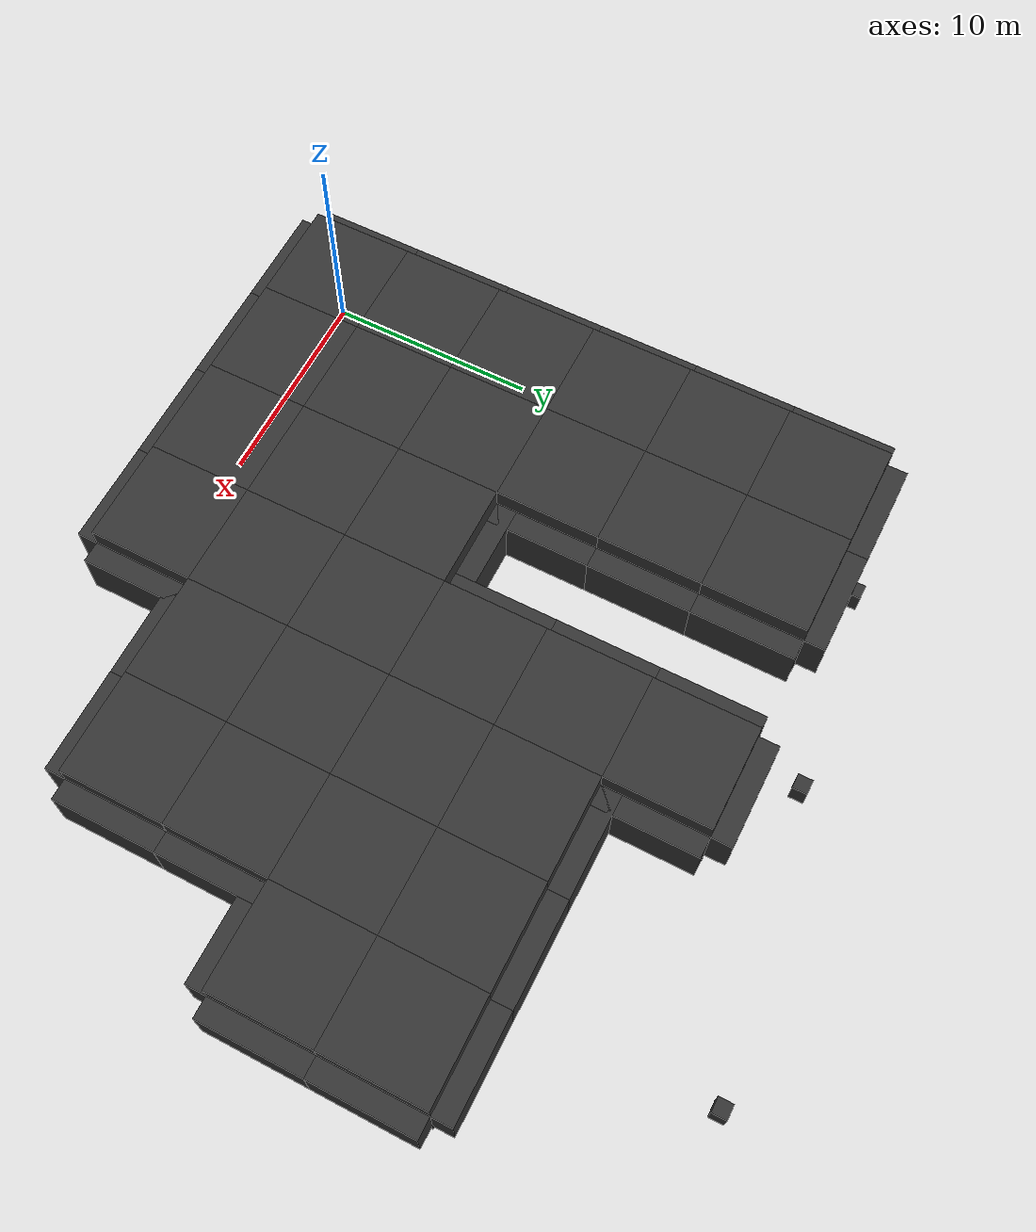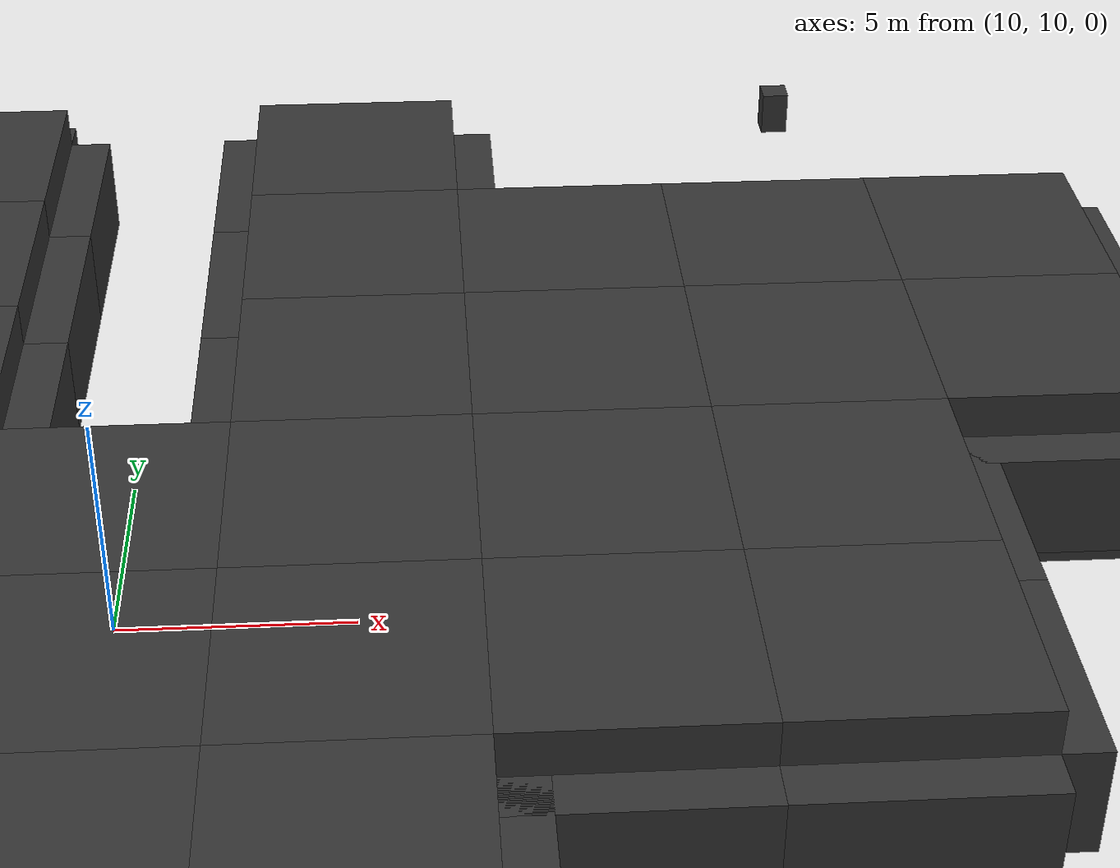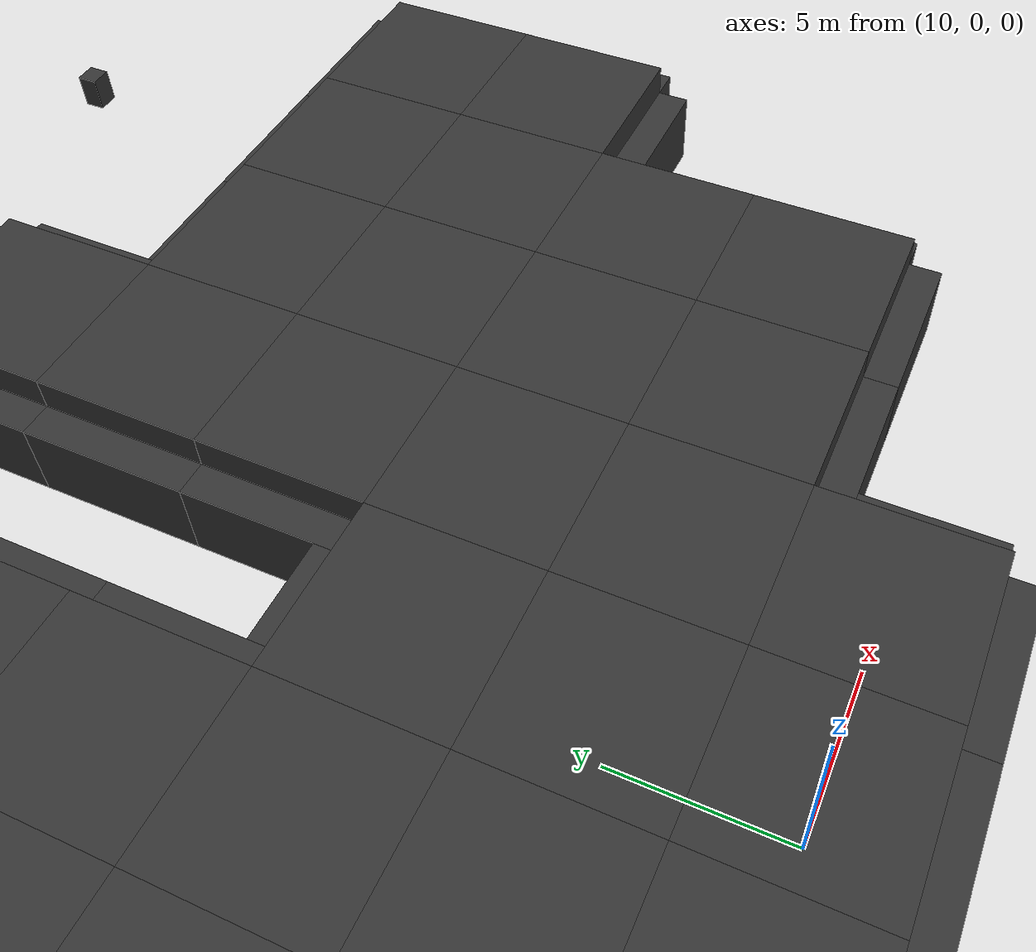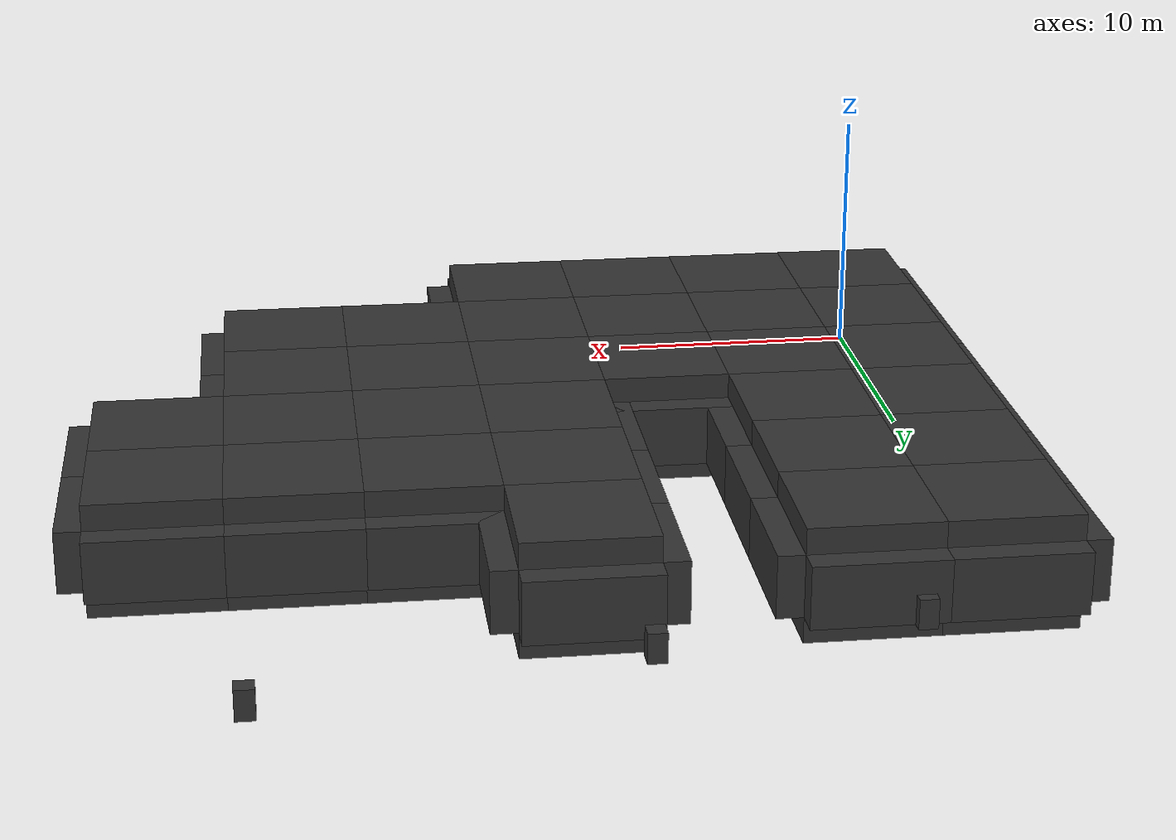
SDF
<sdf version="1.8">
 <world name="RG1">
  <model name="floor_1">
   <static>true</static>
   <pose>0.0 0.0 -0.5 0.0 0.0 0.0</pose>
   <link name="floor_1-base-link">
    <visual name="floor_1-visual">
     <geometry><box><size>5 5 1.0</size></box></geometry>
     <material><diffuse>0.2 0.2 0.2 1</diffuse><specular>0.1 0.1 0.1 1</specular></material>
    </visual>
   </link>
  </model>
  <model name="ceiling_1">
   <static>true</static>
   <pose>0.0 0.0 2.9 0.0 0.0 0.0</pose>
   <link name="ceiling_1-base-link">
    <visual name="ceiling_1-visual">
     <geometry><box><size>5 5 1.0</size></box></geometry>
     <material><diffuse>0.2 0.2 0.2 1</diffuse><specular>0.1 0.1 0.1 1</specular></material>
    </visual>
    <light type="point" name="ceiling_1-light">
     <pose>0 0 -1 0 0 0</pose>
     <cast_shadows>false</cast_shadows>
     <diffuse>0.8 0.8 0.8 1</diffuse>
     <attenuation>
      <range>10</range>
      <constant>0.8</constant>
      <linear>0.05</linear>
      <quadratic>0.01</quadratic>
     </attenuation>
    </light>
   </link>
  </model>
  <model name="wall_1">
   <static>true</static>
   <pose>-3.0 0.0 1.2 0.0 0.0 1.570796326795</pose>
   <link name="wall_1-base-link">
    <visual name="wall_1-visual">
     <geometry><box><size>5 1 2.4</size></box></geometry>
     <material><diffuse>0.2 0.2 0.2 1</diffuse><specular>0.1 0.1 0.1 1</specular></material>
    </visual>
   </link>
  </model>
  <model name="wall_2">
   <static>true</static>
   <pose>0.0 -3.0 1.2 0.0 0.0 0.0</pose>
   <link name="wall_2-base-link">
    <visual name="wall_2-visual">
     <geometry><box><size>5 1 2.4</size></box></geometry>
     <material><diffuse>0.2 0.2 0.2 1</diffuse><specular>0.1 0.1 0.1 1</specular></material>
    </visual>
   </link>
  </model>
  <model name="floor_2">
   <static>true</static>
   <pose>0.0 5.0 -0.5 0.0 0.0 0.0</pose>
   <link name="floor_2-base-link">
    <visual name="floor_2-visual">
     <geometry><box><size>5 5 1.0</size></box></geometry>
     <material><diffuse>0.2 0.2 0.2 1</diffuse><specular>0.1 0.1 0.1 1</specular></material>
    </visual>
   </link>
  </model>
  <model name="ceiling_2">
   <static>true</static>
   <pose>0.0 5.0 2.9 0.0 0.0 0.0</pose>
   <link name="ceiling_2-base-link">
    <visual name="ceiling_2-visual">
     <geometry><box><size>5 5 1.0</size></box></geometry>
     <material><diffuse>0.2 0.2 0.2 1</diffuse><specular>0.1 0.1 0.1 1</specular></material>
    </visual>
    <light type="point" name="ceiling_2-light">
     <pose>0 0 -1 0 0 0</pose>
     <cast_shadows>false</cast_shadows>
     <diffuse>0.8 0.8 0.8 1</diffuse>
     <attenuation>
      <range>10</range>
      <constant>0.8</constant>
      <linear>0.05</linear>
      <quadratic>0.01</quadratic>
     </attenuation>
    </light>
   </link>
  </model>
  <model name="wall_3">
   <static>true</static>
   <pose>-3.0 5.0 1.2 0.0 0.0 1.570796326795</pose>
   <link name="wall_3-base-link">
    <visual name="wall_3-visual">
     <geometry><box><size>5 1 2.4</size></box></geometry>
     <material><diffuse>0.2 0.2 0.2 1</diffuse><specular>0.1 0.1 0.1 1</specular></material>
    </visual>
   </link>
  </model>
  <model name="floor_3">
   <static>true</static>
   <pose>0.0 10.0 -0.5 0.0 0.0 0.0</pose>
   <link name="floor_3-base-link">
    <visual name="floor_3-visual">
     <geometry><box><size>5 5 1.0</size></box></geometry>
     <material><diffuse>0.2 0.2 0.2 1</diffuse><specular>0.1 0.1 0.1 1</specular></material>
    </visual>
   </link>
  </model>
  <model name="ceiling_3">
   <static>true</static>
   <pose>0.0 10.0 2.9 0.0 0.0 0.0</pose>
   <link name="ceiling_3-base-link">
    <visual name="ceiling_3-visual">
     <geometry><box><size>5 5 1.0</size></box></geometry>
     <material><diffuse>0.2 0.2 0.2 1</diffuse><specular>0.1 0.1 0.1 1</specular></material>
    </visual>
    <light type="point" name="ceiling_3-light">
     <pose>0 0 -1 0 0 0</pose>
     <cast_shadows>false</cast_shadows>
     <diffuse>0.8 0.8 0.8 1</diffuse>
     <attenuation>
      <range>10</range>
      <constant>0.8</constant>
      <linear>0.05</linear>
      <quadratic>0.01</quadratic>
     </attenuation>
    </light>
   </link>
  </model>
  <model name="wall_4">
   <static>true</static>
   <pose>-3.0 10.0 1.2 0.0 0.0 1.570796326795</pose>
   <link name="wall_4-base-link">
    <visual name="wall_4-visual">
     <geometry><box><size>5 1 2.4</size></box></geometry>
     <material><diffuse>0.2 0.2 0.2 1</diffuse><specular>0.1 0.1 0.1 1</specular></material>
    </visual>
   </link>
  </model>
  <model name="floor_4">
   <static>true</static>
   <pose>0.0 15.0 -0.5 0.0 0.0 0.0</pose>
   <link name="floor_4-base-link">
    <visual name="floor_4-visual">
     <geometry><box><size>5 5 1.0</size></box></geometry>
     <material><diffuse>0.2 0.2 0.2 1</diffuse><specular>0.1 0.1 0.1 1</specular></material>
    </visual>
   </link>
  </model>
  <model name="ceiling_4">
   <static>true</static>
   <pose>0.0 15.0 2.9 0.0 0.0 0.0</pose>
   <link name="ceiling_4-base-link">
    <visual name="ceiling_4-visual">
     <geometry><box><size>5 5 1.0</size></box></geometry>
     <material><diffuse>0.2 0.2 0.2 1</diffuse><specular>0.1 0.1 0.1 1</specular></material>
    </visual>
    <light type="point" name="ceiling_4-light">
     <pose>0 0 -1 0 0 0</pose>
     <cast_shadows>false</cast_shadows>
     <diffuse>0.8 0.8 0.8 1</diffuse>
     <attenuation>
      <range>10</range>
      <constant>0.8</constant>
      <linear>0.05</linear>
      <quadratic>0.01</quadratic>
     </attenuation>
    </light>
   </link>
  </model>
  <model name="wall_5">
   <static>true</static>
   <pose>-3.0 15.0 1.2 0.0 0.0 1.570796326795</pose>
   <link name="wall_5-base-link">
    <visual name="wall_5-visual">
     <geometry><box><size>5 1 2.4</size></box></geometry>
     <material><diffuse>0.2 0.2 0.2 1</diffuse><specular>0.1 0.1 0.1 1</specular></material>
    </visual>
   </link>
  </model>
  <model name="floor_5">
   <static>true</static>
   <pose>0.0 20.0 -0.5 0.0 0.0 0.0</pose>
   <link name="floor_5-base-link">
    <visual name="floor_5-visual">
     <geometry><box><size>5 5 1.0</size></box></geometry>
     <material><diffuse>0.2 0.2 0.2 1</diffuse><specular>0.1 0.1 0.1 1</specular></material>
    </visual>
   </link>
  </model>
  <model name="ceiling_5">
   <static>true</static>
   <pose>0.0 20.0 2.9 0.0 0.0 0.0</pose>
   <link name="ceiling_5-base-link">
    <visual name="ceiling_5-visual">
     <geometry><box><size>5 5 1.0</size></box></geometry>
     <material><diffuse>0.2 0.2 0.2 1</diffuse><specular>0.1 0.1 0.1 1</specular></material>
    </visual>
    <light type="point" name="ceiling_5-light">
     <pose>0 0 -1 0 0 0</pose>
     <cast_shadows>false</cast_shadows>
     <diffuse>0.8 0.8 0.8 1</diffuse>
     <attenuation>
      <range>10</range>
      <constant>0.8</constant>
      <linear>0.05</linear>
      <quadratic>0.01</quadratic>
     </attenuation>
    </light>
   </link>
  </model>
  <model name="wall_6">
   <static>true</static>
   <pose>-3.0 20.0 1.2 0.0 0.0 1.570796326795</pose>
   <link name="wall_6-base-link">
    <visual name="wall_6-visual">
     <geometry><box><size>5 1 2.4</size></box></geometry>
     <material><diffuse>0.2 0.2 0.2 1</diffuse><specular>0.1 0.1 0.1 1</specular></material>
    </visual>
   </link>
  </model>
  <model name="floor_6">
   <static>true</static>
   <pose>0.0 25.0 -0.5 0.0 0.0 0.0</pose>
   <link name="floor_6-base-link">
    <visual name="floor_6-visual">
     <geometry><box><size>5 5 1.0</size></box></geometry>
     <material><diffuse>0.2 0.2 0.2 1</diffuse><specular>0.1 0.1 0.1 1</specular></material>
    </visual>
   </link>
  </model>
  <model name="ceiling_6">
   <static>true</static>
   <pose>0.0 25.0 2.9 0.0 0.0 0.0</pose>
   <link name="ceiling_6-base-link">
    <visual name="ceiling_6-visual">
     <geometry><box><size>5 5 1.0</size></box></geometry>
     <material><diffuse>0.2 0.2 0.2 1</diffuse><specular>0.1 0.1 0.1 1</specular></material>
    </visual>
    <light type="point" name="ceiling_6-light">
     <pose>0 0 -1 0 0 0</pose>
     <cast_shadows>false</cast_shadows>
     <diffuse>0.8 0.8 0.8 1</diffuse>
     <attenuation>
      <range>10</range>
      <constant>0.8</constant>
      <linear>0.05</linear>
      <quadratic>0.01</quadratic>
     </attenuation>
    </light>
   </link>
  </model>
  <model name="wall_7">
   <static>true</static>
   <pose>-3.0 25.0 1.2 0.0 0.0 1.570796326795</pose>
   <link name="wall_7-base-link">
    <visual name="wall_7-visual">
     <geometry><box><size>5 1 2.4</size></box></geometry>
     <material><diffuse>0.2 0.2 0.2 1</diffuse><specular>0.1 0.1 0.1 1</specular></material>
    </visual>
   </link>
  </model>
  <model name="wall_8">
   <static>true</static>
   <pose>0.0 28.0 1.2 0.0 0.0 0.0</pose>
   <link name="wall_8-base-link">
    <visual name="wall_8-visual">
     <geometry><box><size>5 1 2.4</size></box></geometry>
     <material><diffuse>0.2 0.2 0.2 1</diffuse><specular>0.1 0.1 0.1 1</specular></material>
    </visual>
   </link>
  </model>
  <model name="floor_7">
   <static>true</static>
   <pose>5.0 0.0 -0.5 0.0 0.0 0.0</pose>
   <link name="floor_7-base-link">
    <visual name="floor_7-visual">
     <geometry><box><size>5 5 1.0</size></box></geometry>
     <material><diffuse>0.2 0.2 0.2 1</diffuse><specular>0.1 0.1 0.1 1</specular></material>
    </visual>
   </link>
  </model>
  <model name="ceiling_7">
   <static>true</static>
   <pose>5.0 0.0 2.9 0.0 0.0 0.0</pose>
   <link name="ceiling_7-base-link">
    <visual name="ceiling_7-visual">
     <geometry><box><size>5 5 1.0</size></box></geometry>
     <material><diffuse>0.2 0.2 0.2 1</diffuse><specular>0.1 0.1 0.1 1</specular></material>
    </visual>
    <light type="point" name="ceiling_7-light">
     <pose>0 0 -1 0 0 0</pose>
     <cast_shadows>false</cast_shadows>
     <diffuse>0.8 0.8 0.8 1</diffuse>
     <attenuation>
      <range>10</range>
      <constant>0.8</constant>
      <linear>0.05</linear>
      <quadratic>0.01</quadratic>
     </attenuation>
    </light>
   </link>
  </model>
  <model name="wall_9">
   <static>true</static>
   <pose>5.0 -3.0 1.2 0.0 0.0 0.0</pose>
   <link name="wall_9-base-link">
    <visual name="wall_9-visual">
     <geometry><box><size>5 1 2.4</size></box></geometry>
     <material><diffuse>0.2 0.2 0.2 1</diffuse><specular>0.1 0.1 0.1 1</specular></material>
    </visual>
   </link>
  </model>
  <model name="floor_8">
   <static>true</static>
   <pose>5.0 5.0 -0.5 0.0 0.0 0.0</pose>
   <link name="floor_8-base-link">
    <visual name="floor_8-visual">
     <geometry><box><size>5 5 1.0</size></box></geometry>
     <material><diffuse>0.2 0.2 0.2 1</diffuse><specular>0.1 0.1 0.1 1</specular></material>
    </visual>
   </link>
  </model>
  <model name="ceiling_8">
   <static>true</static>
   <pose>5.0 5.0 2.9 0.0 0.0 0.0</pose>
   <link name="ceiling_8-base-link">
    <visual name="ceiling_8-visual">
     <geometry><box><size>5 5 1.0</size></box></geometry>
     <material><diffuse>0.2 0.2 0.2 1</diffuse><specular>0.1 0.1 0.1 1</specular></material>
    </visual>
    <light type="point" name="ceiling_8-light">
     <pose>0 0 -1 0 0 0</pose>
     <cast_shadows>false</cast_shadows>
     <diffuse>0.8 0.8 0.8 1</diffuse>
     <attenuation>
      <range>10</range>
      <constant>0.8</constant>
      <linear>0.05</linear>
      <quadratic>0.01</quadratic>
     </attenuation>
    </light>
   </link>
  </model>
  <model name="floor_9">
   <static>true</static>
   <pose>5.0 10.0 -0.5 0.0 0.0 0.0</pose>
   <link name="floor_9-base-link">
    <visual name="floor_9-visual">
     <geometry><box><size>5 5 1.0</size></box></geometry>
     <material><diffuse>0.2 0.2 0.2 1</diffuse><specular>0.1 0.1 0.1 1</specular></material>
    </visual>
   </link>
  </model>
  <model name="ceiling_9">
   <static>true</static>
   <pose>5.0 10.0 2.9 0.0 0.0 0.0</pose>
   <link name="ceiling_9-base-link">
    <visual name="ceiling_9-visual">
     <geometry><box><size>5 5 1.0</size></box></geometry>
     <material><diffuse>0.2 0.2 0.2 1</diffuse><specular>0.1 0.1 0.1 1</specular></material>
    </visual>
    <light type="point" name="ceiling_9-light">
     <pose>0 0 -1 0 0 0</pose>
     <cast_shadows>false</cast_shadows>
     <diffuse>0.8 0.8 0.8 1</diffuse>
     <attenuation>
      <range>10</range>
      <constant>0.8</constant>
      <linear>0.05</linear>
      <quadratic>0.01</quadratic>
     </attenuation>
    </light>
   </link>
  </model>
  <model name="floor_10">
   <static>true</static>
   <pose>5.0 15.0 -0.5 0.0 0.0 0.0</pose>
   <link name="floor_10-base-link">
    <visual name="floor_10-visual">
     <geometry><box><size>5 5 1.0</size></box></geometry>
     <material><diffuse>0.2 0.2 0.2 1</diffuse><specular>0.1 0.1 0.1 1</specular></material>
    </visual>
   </link>
  </model>
  <model name="ceiling_10">
   <static>true</static>
   <pose>5.0 15.0 2.9 0.0 0.0 0.0</pose>
   <link name="ceiling_10-base-link">
    <visual name="ceiling_10-visual">
     <geometry><box><size>5 5 1.0</size></box></geometry>
     <material><diffuse>0.2 0.2 0.2 1</diffuse><specular>0.1 0.1 0.1 1</specular></material>
    </visual>
    <light type="point" name="ceiling_10-light">
     <pose>0 0 -1 0 0 0</pose>
     <cast_shadows>false</cast_shadows>
     <diffuse>0.8 0.8 0.8 1</diffuse>
     <attenuation>
      <range>10</range>
      <constant>0.8</constant>
      <linear>0.05</linear>
      <quadratic>0.01</quadratic>
     </attenuation>
    </light>
   </link>
  </model>
  <model name="wall_10">
   <static>true</static>
   <pose>8.0 15.0 1.2 0.0 0.0 1.570796326795</pose>
   <link name="wall_10-base-link">
    <visual name="wall_10-visual">
     <geometry><box><size>5 1 2.4</size></box></geometry>
     <material><diffuse>0.2 0.2 0.2 1</diffuse><specular>0.1 0.1 0.1 1</specular></material>
    </visual>
   </link>
  </model>
  <model name="floor_11">
   <static>true</static>
   <pose>5.0 20.0 -0.5 0.0 0.0 0.0</pose>
   <link name="floor_11-base-link">
    <visual name="floor_11-visual">
     <geometry><box><size>5 5 1.0</size></box></geometry>
     <material><diffuse>0.2 0.2 0.2 1</diffuse><specular>0.1 0.1 0.1 1</specular></material>
    </visual>
   </link>
  </model>
  <model name="ceiling_11">
   <static>true</static>
   <pose>5.0 20.0 2.9 0.0 0.0 0.0</pose>
   <link name="ceiling_11-base-link">
    <visual name="ceiling_11-visual">
     <geometry><box><size>5 5 1.0</size></box></geometry>
     <material><diffuse>0.2 0.2 0.2 1</diffuse><specular>0.1 0.1 0.1 1</specular></material>
    </visual>
    <light type="point" name="ceiling_11-light">
     <pose>0 0 -1 0 0 0</pose>
     <cast_shadows>false</cast_shadows>
     <diffuse>0.8 0.8 0.8 1</diffuse>
     <attenuation>
      <range>10</range>
      <constant>0.8</constant>
      <linear>0.05</linear>
      <quadratic>0.01</quadratic>
     </attenuation>
    </light>
   </link>
  </model>
  <model name="wall_11">
   <static>true</static>
   <pose>8.0 20.0 1.2 0.0 0.0 1.570796326795</pose>
   <link name="wall_11-base-link">
    <visual name="wall_11-visual">
     <geometry><box><size>5 1 2.4</size></box></geometry>
     <material><diffuse>0.2 0.2 0.2 1</diffuse><specular>0.1 0.1 0.1 1</specular></material>
    </visual>
   </link>
  </model>
  <model name="floor_12">
   <static>true</static>
   <pose>5.0 25.0 -0.5 0.0 0.0 0.0</pose>
   <link name="floor_12-base-link">
    <visual name="floor_12-visual">
     <geometry><box><size>5 5 1.0</size></box></geometry>
     <material><diffuse>0.2 0.2 0.2 1</diffuse><specular>0.1 0.1 0.1 1</specular></material>
    </visual>
   </link>
  </model>
  <model name="ceiling_12">
   <static>true</static>
   <pose>5.0 25.0 2.9 0.0 0.0 0.0</pose>
   <link name="ceiling_12-base-link">
    <visual name="ceiling_12-visual">
     <geometry><box><size>5 5 1.0</size></box></geometry>
     <material><diffuse>0.2 0.2 0.2 1</diffuse><specular>0.1 0.1 0.1 1</specular></material>
    </visual>
    <light type="point" name="ceiling_12-light">
     <pose>0 0 -1 0 0 0</pose>
     <cast_shadows>false</cast_shadows>
     <diffuse>0.8 0.8 0.8 1</diffuse>
     <attenuation>
      <range>10</range>
      <constant>0.8</constant>
      <linear>0.05</linear>
      <quadratic>0.01</quadratic>
     </attenuation>
    </light>
   </link>
  </model>
  <model name="wall_12">
   <static>true</static>
   <pose>8.0 25.0 1.2 0.0 0.0 1.570796326795</pose>
   <link name="wall_12-base-link">
    <visual name="wall_12-visual">
     <geometry><box><size>5 1 2.4</size></box></geometry>
     <material><diffuse>0.2 0.2 0.2 1</diffuse><specular>0.1 0.1 0.1 1</specular></material>
    </visual>
   </link>
  </model>
  <model name="wall_13">
   <static>true</static>
   <pose>5.0 28.0 1.2 0.0 0.0 0.0</pose>
   <link name="wall_13-base-link">
    <visual name="wall_13-visual">
     <geometry><box><size>5 1 2.4</size></box></geometry>
     <material><diffuse>0.2 0.2 0.2 1</diffuse><specular>0.1 0.1 0.1 1</specular></material>
    </visual>
   </link>
  </model>
  <model name="floor_13">
   <static>true</static>
   <pose>10.0 0.0 -0.5 0.0 0.0 0.0</pose>
   <link name="floor_13-base-link">
    <visual name="floor_13-visual">
     <geometry><box><size>5 5 1.0</size></box></geometry>
     <material><diffuse>0.2 0.2 0.2 1</diffuse><specular>0.1 0.1 0.1 1</specular></material>
    </visual>
   </link>
  </model>
  <model name="ceiling_13">
   <static>true</static>
   <pose>10.0 0.0 2.9 0.0 0.0 0.0</pose>
   <link name="ceiling_13-base-link">
    <visual name="ceiling_13-visual">
     <geometry><box><size>5 5 1.0</size></box></geometry>
     <material><diffuse>0.2 0.2 0.2 1</diffuse><specular>0.1 0.1 0.1 1</specular></material>
    </visual>
    <light type="point" name="ceiling_13-light">
     <pose>0 0 -1 0 0 0</pose>
     <cast_shadows>false</cast_shadows>
     <diffuse>0.8 0.8 0.8 1</diffuse>
     <attenuation>
      <range>10</range>
      <constant>0.8</constant>
      <linear>0.05</linear>
      <quadratic>0.01</quadratic>
     </attenuation>
    </light>
   </link>
  </model>
  <model name="wall_14">
   <static>true</static>
   <pose>10.0 -3.0 1.2 0.0 0.0 0.0</pose>
   <link name="wall_14-base-link">
    <visual name="wall_14-visual">
     <geometry><box><size>5 1 2.4</size></box></geometry>
     <material><diffuse>0.2 0.2 0.2 1</diffuse><specular>0.1 0.1 0.1 1</specular></material>
    </visual>
   </link>
  </model>
  <model name="floor_14">
   <static>true</static>
   <pose>10.0 5.0 -0.5 0.0 0.0 0.0</pose>
   <link name="floor_14-base-link">
    <visual name="floor_14-visual">
     <geometry><box><size>5 5 1.0</size></box></geometry>
     <material><diffuse>0.2 0.2 0.2 1</diffuse><specular>0.1 0.1 0.1 1</specular></material>
    </visual>
   </link>
  </model>
  <model name="ceiling_14">
   <static>true</static>
   <pose>10.0 5.0 2.9 0.0 0.0 0.0</pose>
   <link name="ceiling_14-base-link">
    <visual name="ceiling_14-visual">
     <geometry><box><size>5 5 1.0</size></box></geometry>
     <material><diffuse>0.2 0.2 0.2 1</diffuse><specular>0.1 0.1 0.1 1</specular></material>
    </visual>
    <light type="point" name="ceiling_14-light">
     <pose>0 0 -1 0 0 0</pose>
     <cast_shadows>false</cast_shadows>
     <diffuse>0.8 0.8 0.8 1</diffuse>
     <attenuation>
      <range>10</range>
      <constant>0.8</constant>
      <linear>0.05</linear>
      <quadratic>0.01</quadratic>
     </attenuation>
    </light>
   </link>
  </model>
  <model name="floor_15">
   <static>true</static>
   <pose>10.0 10.0 -0.5 0.0 0.0 0.0</pose>
   <link name="floor_15-base-link">
    <visual name="floor_15-visual">
     <geometry><box><size>5 5 1.0</size></box></geometry>
     <material><diffuse>0.2 0.2 0.2 1</diffuse><specular>0.1 0.1 0.1 1</specular></material>
    </visual>
   </link>
  </model>
  <model name="ceiling_15">
   <static>true</static>
   <pose>10.0 10.0 2.9 0.0 0.0 0.0</pose>
   <link name="ceiling_15-base-link">
    <visual name="ceiling_15-visual">
     <geometry><box><size>5 5 1.0</size></box></geometry>
     <material><diffuse>0.2 0.2 0.2 1</diffuse><specular>0.1 0.1 0.1 1</specular></material>
    </visual>
    <light type="point" name="ceiling_15-light">
     <pose>0 0 -1 0 0 0</pose>
     <cast_shadows>false</cast_shadows>
     <diffuse>0.8 0.8 0.8 1</diffuse>
     <attenuation>
      <range>10</range>
      <constant>0.8</constant>
      <linear>0.05</linear>
      <quadratic>0.01</quadratic>
     </attenuation>
    </light>
   </link>
  </model>
  <model name="wall_15">
   <static>true</static>
   <pose>10.0 13.0 1.2 0.0 0.0 0.0</pose>
   <link name="wall_15-base-link">
    <visual name="wall_15-visual">
     <geometry><box><size>5 1 2.4</size></box></geometry>
     <material><diffuse>0.2 0.2 0.2 1</diffuse><specular>0.1 0.1 0.1 1</specular></material>
    </visual>
   </link>
  </model>
  <model name="floor_16">
   <static>true</static>
   <pose>15.0 0.0 -0.5 0.0 0.0 0.0</pose>
   <link name="floor_16-base-link">
    <visual name="floor_16-visual">
     <geometry><box><size>5 5 1.0</size></box></geometry>
     <material><diffuse>0.2 0.2 0.2 1</diffuse><specular>0.1 0.1 0.1 1</specular></material>
    </visual>
   </link>
  </model>
  <model name="ceiling_16">
   <static>true</static>
   <pose>15.0 0.0 2.9 0.0 0.0 0.0</pose>
   <link name="ceiling_16-base-link">
    <visual name="ceiling_16-visual">
     <geometry><box><size>5 5 1.0</size></box></geometry>
     <material><diffuse>0.2 0.2 0.2 1</diffuse><specular>0.1 0.1 0.1 1</specular></material>
    </visual>
    <light type="point" name="ceiling_16-light">
     <pose>0 0 -1 0 0 0</pose>
     <cast_shadows>false</cast_shadows>
     <diffuse>0.8 0.8 0.8 1</diffuse>
     <attenuation>
      <range>10</range>
      <constant>0.8</constant>
      <linear>0.05</linear>
      <quadratic>0.01</quadratic>
     </attenuation>
    </light>
   </link>
  </model>
  <model name="wall_16">
   <static>true</static>
   <pose>18.0 0.0 1.2 0.0 0.0 1.570796326795</pose>
   <link name="wall_16-base-link">
    <visual name="wall_16-visual">
     <geometry><box><size>5 1 2.4</size></box></geometry>
     <material><diffuse>0.2 0.2 0.2 1</diffuse><specular>0.1 0.1 0.1 1</specular></material>
    </visual>
   </link>
  </model>
  <model name="wall_17">
   <static>true</static>
   <pose>15.0 -3.0 1.2 0.0 0.0 0.0</pose>
   <link name="wall_17-base-link">
    <visual name="wall_17-visual">
     <geometry><box><size>5 1 2.4</size></box></geometry>
     <material><diffuse>0.2 0.2 0.2 1</diffuse><specular>0.1 0.1 0.1 1</specular></material>
    </visual>
   </link>
  </model>
  <model name="floor_17">
   <static>true</static>
   <pose>15.0 5.0 -0.5 0.0 0.0 0.0</pose>
   <link name="floor_17-base-link">
    <visual name="floor_17-visual">
     <geometry><box><size>5 5 1.0</size></box></geometry>
     <material><diffuse>0.2 0.2 0.2 1</diffuse><specular>0.1 0.1 0.1 1</specular></material>
    </visual>
   </link>
  </model>
  <model name="ceiling_17">
   <static>true</static>
   <pose>15.0 5.0 2.9 0.0 0.0 0.0</pose>
   <link name="ceiling_17-base-link">
    <visual name="ceiling_17-visual">
     <geometry><box><size>5 5 1.0</size></box></geometry>
     <material><diffuse>0.2 0.2 0.2 1</diffuse><specular>0.1 0.1 0.1 1</specular></material>
    </visual>
    <light type="point" name="ceiling_17-light">
     <pose>0 0 -1 0 0 0</pose>
     <cast_shadows>false</cast_shadows>
     <diffuse>0.8 0.8 0.8 1</diffuse>
     <attenuation>
      <range>10</range>
      <constant>0.8</constant>
      <linear>0.05</linear>
      <quadratic>0.01</quadratic>
     </attenuation>
    </light>
   </link>
  </model>
  <model name="floor_18">
   <static>true</static>
   <pose>15.0 10.0 -0.5 0.0 0.0 0.0</pose>
   <link name="floor_18-base-link">
    <visual name="floor_18-visual">
     <geometry><box><size>5 5 1.0</size></box></geometry>
     <material><diffuse>0.2 0.2 0.2 1</diffuse><specular>0.1 0.1 0.1 1</specular></material>
    </visual>
   </link>
  </model>
  <model name="ceiling_18">
   <static>true</static>
   <pose>15.0 10.0 2.9 0.0 0.0 0.0</pose>
   <link name="ceiling_18-base-link">
    <visual name="ceiling_18-visual">
     <geometry><box><size>5 5 1.0</size></box></geometry>
     <material><diffuse>0.2 0.2 0.2 1</diffuse><specular>0.1 0.1 0.1 1</specular></material>
    </visual>
    <light type="point" name="ceiling_18-light">
     <pose>0 0 -1 0 0 0</pose>
     <cast_shadows>false</cast_shadows>
     <diffuse>0.8 0.8 0.8 1</diffuse>
     <attenuation>
      <range>10</range>
      <constant>0.8</constant>
      <linear>0.05</linear>
      <quadratic>0.01</quadratic>
     </attenuation>
    </light>
   </link>
  </model>
  <model name="floor_19">
   <static>true</static>
   <pose>15.0 15.0 -0.5 0.0 0.0 0.0</pose>
   <link name="floor_19-base-link">
    <visual name="floor_19-visual">
     <geometry><box><size>5 5 1.0</size></box></geometry>
     <material><diffuse>0.2 0.2 0.2 1</diffuse><specular>0.1 0.1 0.1 1</specular></material>
    </visual>
   </link>
  </model>
  <model name="ceiling_19">
   <static>true</static>
   <pose>15.0 15.0 2.9 0.0 0.0 0.0</pose>
   <link name="ceiling_19-base-link">
    <visual name="ceiling_19-visual">
     <geometry><box><size>5 5 1.0</size></box></geometry>
     <material><diffuse>0.2 0.2 0.2 1</diffuse><specular>0.1 0.1 0.1 1</specular></material>
    </visual>
    <light type="point" name="ceiling_19-light">
     <pose>0 0 -1 0 0 0</pose>
     <cast_shadows>false</cast_shadows>
     <diffuse>0.8 0.8 0.8 1</diffuse>
     <attenuation>
      <range>10</range>
      <constant>0.8</constant>
      <linear>0.05</linear>
      <quadratic>0.01</quadratic>
     </attenuation>
    </light>
   </link>
  </model>
  <model name="wall_18">
   <static>true</static>
   <pose>12.0 15.0 1.2 0.0 0.0 1.570796326795</pose>
   <link name="wall_18-base-link">
    <visual name="wall_18-visual">
     <geometry><box><size>5 1 2.4</size></box></geometry>
     <material><diffuse>0.2 0.2 0.2 1</diffuse><specular>0.1 0.1 0.1 1</specular></material>
    </visual>
   </link>
  </model>
  <model name="floor_20">
   <static>true</static>
   <pose>15.0 20.0 -0.5 0.0 0.0 0.0</pose>
   <link name="floor_20-base-link">
    <visual name="floor_20-visual">
     <geometry><box><size>5 5 1.0</size></box></geometry>
     <material><diffuse>0.2 0.2 0.2 1</diffuse><specular>0.1 0.1 0.1 1</specular></material>
    </visual>
   </link>
  </model>
  <model name="ceiling_20">
   <static>true</static>
   <pose>15.0 20.0 2.9 0.0 0.0 0.0</pose>
   <link name="ceiling_20-base-link">
    <visual name="ceiling_20-visual">
     <geometry><box><size>5 5 1.0</size></box></geometry>
     <material><diffuse>0.2 0.2 0.2 1</diffuse><specular>0.1 0.1 0.1 1</specular></material>
    </visual>
    <light type="point" name="ceiling_20-light">
     <pose>0 0 -1 0 0 0</pose>
     <cast_shadows>false</cast_shadows>
     <diffuse>0.8 0.8 0.8 1</diffuse>
     <attenuation>
      <range>10</range>
      <constant>0.8</constant>
      <linear>0.05</linear>
      <quadratic>0.01</quadratic>
     </attenuation>
    </light>
   </link>
  </model>
  <model name="wall_19">
   <static>true</static>
   <pose>12.0 20.0 1.2 0.0 0.0 1.570796326795</pose>
   <link name="wall_19-base-link">
    <visual name="wall_19-visual">
     <geometry><box><size>5 1 2.4</size></box></geometry>
     <material><diffuse>0.2 0.2 0.2 1</diffuse><specular>0.1 0.1 0.1 1</specular></material>
    </visual>
   </link>
  </model>
  <model name="floor_21">
   <static>true</static>
   <pose>15.0 25.0 -0.5 0.0 0.0 0.0</pose>
   <link name="floor_21-base-link">
    <visual name="floor_21-visual">
     <geometry><box><size>5 5 1.0</size></box></geometry>
     <material><diffuse>0.2 0.2 0.2 1</diffuse><specular>0.1 0.1 0.1 1</specular></material>
    </visual>
   </link>
  </model>
  <model name="ceiling_21">
   <static>true</static>
   <pose>15.0 25.0 2.9 0.0 0.0 0.0</pose>
   <link name="ceiling_21-base-link">
    <visual name="ceiling_21-visual">
     <geometry><box><size>5 5 1.0</size></box></geometry>
     <material><diffuse>0.2 0.2 0.2 1</diffuse><specular>0.1 0.1 0.1 1</specular></material>
    </visual>
    <light type="point" name="ceiling_21-light">
     <pose>0 0 -1 0 0 0</pose>
     <cast_shadows>false</cast_shadows>
     <diffuse>0.8 0.8 0.8 1</diffuse>
     <attenuation>
      <range>10</range>
      <constant>0.8</constant>
      <linear>0.05</linear>
      <quadratic>0.01</quadratic>
     </attenuation>
    </light>
   </link>
  </model>
  <model name="wall_20">
   <static>true</static>
   <pose>12.0 25.0 1.2 0.0 0.0 1.570796326795</pose>
   <link name="wall_20-base-link">
    <visual name="wall_20-visual">
     <geometry><box><size>5 1 2.4</size></box></geometry>
     <material><diffuse>0.2 0.2 0.2 1</diffuse><specular>0.1 0.1 0.1 1</specular></material>
    </visual>
   </link>
  </model>
  <model name="wall_21">
   <static>true</static>
   <pose>18.0 25.0 1.2 0.0 0.0 1.570796326795</pose>
   <link name="wall_21-base-link">
    <visual name="wall_21-visual">
     <geometry><box><size>5 1 2.4</size></box></geometry>
     <material><diffuse>0.2 0.2 0.2 1</diffuse><specular>0.1 0.1 0.1 1</specular></material>
    </visual>
   </link>
  </model>
  <model name="wall_22">
   <static>true</static>
   <pose>15.0 28.0 1.2 0.0 0.0 0.0</pose>
   <link name="wall_22-base-link">
    <visual name="wall_22-visual">
     <geometry><box><size>5 1 2.4</size></box></geometry>
     <material><diffuse>0.2 0.2 0.2 1</diffuse><specular>0.1 0.1 0.1 1</specular></material>
    </visual>
   </link>
  </model>
  <model name="floor_22">
   <static>true</static>
   <pose>20.0 5.0 -0.5 0.0 0.0 0.0</pose>
   <link name="floor_22-base-link">
    <visual name="floor_22-visual">
     <geometry><box><size>5 5 1.0</size></box></geometry>
     <material><diffuse>0.2 0.2 0.2 1</diffuse><specular>0.1 0.1 0.1 1</specular></material>
    </visual>
   </link>
  </model>
  <model name="ceiling_22">
   <static>true</static>
   <pose>20.0 5.0 2.9 0.0 0.0 0.0</pose>
   <link name="ceiling_22-base-link">
    <visual name="ceiling_22-visual">
     <geometry><box><size>5 5 1.0</size></box></geometry>
     <material><diffuse>0.2 0.2 0.2 1</diffuse><specular>0.1 0.1 0.1 1</specular></material>
    </visual>
    <light type="point" name="ceiling_22-light">
     <pose>0 0 -1 0 0 0</pose>
     <cast_shadows>false</cast_shadows>
     <diffuse>0.8 0.8 0.8 1</diffuse>
     <attenuation>
      <range>10</range>
      <constant>0.8</constant>
      <linear>0.05</linear>
      <quadratic>0.01</quadratic>
     </attenuation>
    </light>
   </link>
  </model>
  <model name="wall_23">
   <static>true</static>
   <pose>20.0 2.0 1.2 0.0 0.0 0.0</pose>
   <link name="wall_23-base-link">
    <visual name="wall_23-visual">
     <geometry><box><size>5 1 2.4</size></box></geometry>
     <material><diffuse>0.2 0.2 0.2 1</diffuse><specular>0.1 0.1 0.1 1</specular></material>
    </visual>
   </link>
  </model>
  <model name="floor_23">
   <static>true</static>
   <pose>20.0 10.0 -0.5 0.0 0.0 0.0</pose>
   <link name="floor_23-base-link">
    <visual name="floor_23-visual">
     <geometry><box><size>5 5 1.0</size></box></geometry>
     <material><diffuse>0.2 0.2 0.2 1</diffuse><specular>0.1 0.1 0.1 1</specular></material>
    </visual>
   </link>
  </model>
  <model name="ceiling_23">
   <static>true</static>
   <pose>20.0 10.0 2.9 0.0 0.0 0.0</pose>
   <link name="ceiling_23-base-link">
    <visual name="ceiling_23-visual">
     <geometry><box><size>5 5 1.0</size></box></geometry>
     <material><diffuse>0.2 0.2 0.2 1</diffuse><specular>0.1 0.1 0.1 1</specular></material>
    </visual>
    <light type="point" name="ceiling_23-light">
     <pose>0 0 -1 0 0 0</pose>
     <cast_shadows>false</cast_shadows>
     <diffuse>0.8 0.8 0.8 1</diffuse>
     <attenuation>
      <range>10</range>
      <constant>0.8</constant>
      <linear>0.05</linear>
      <quadratic>0.01</quadratic>
     </attenuation>
    </light>
   </link>
  </model>
  <model name="floor_24">
   <static>true</static>
   <pose>20.0 15.0 -0.5 0.0 0.0 0.0</pose>
   <link name="floor_24-base-link">
    <visual name="floor_24-visual">
     <geometry><box><size>5 5 1.0</size></box></geometry>
     <material><diffuse>0.2 0.2 0.2 1</diffuse><specular>0.1 0.1 0.1 1</specular></material>
    </visual>
   </link>
  </model>
  <model name="ceiling_24">
   <static>true</static>
   <pose>20.0 15.0 2.9 0.0 0.0 0.0</pose>
   <link name="ceiling_24-base-link">
    <visual name="ceiling_24-visual">
     <geometry><box><size>5 5 1.0</size></box></geometry>
     <material><diffuse>0.2 0.2 0.2 1</diffuse><specular>0.1 0.1 0.1 1</specular></material>
    </visual>
    <light type="point" name="ceiling_24-light">
     <pose>0 0 -1 0 0 0</pose>
     <cast_shadows>false</cast_shadows>
     <diffuse>0.8 0.8 0.8 1</diffuse>
     <attenuation>
      <range>10</range>
      <constant>0.8</constant>
      <linear>0.05</linear>
      <quadratic>0.01</quadratic>
     </attenuation>
    </light>
   </link>
  </model>
  <model name="floor_25">
   <static>true</static>
   <pose>20.0 20.0 -0.5 0.0 0.0 0.0</pose>
   <link name="floor_25-base-link">
    <visual name="floor_25-visual">
     <geometry><box><size>5 5 1.0</size></box></geometry>
     <material><diffuse>0.2 0.2 0.2 1</diffuse><specular>0.1 0.1 0.1 1</specular></material>
    </visual>
   </link>
  </model>
  <model name="ceiling_25">
   <static>true</static>
   <pose>20.0 20.0 2.9 0.0 0.0 0.0</pose>
   <link name="ceiling_25-base-link">
    <visual name="ceiling_25-visual">
     <geometry><box><size>5 5 1.0</size></box></geometry>
     <material><diffuse>0.2 0.2 0.2 1</diffuse><specular>0.1 0.1 0.1 1</specular></material>
    </visual>
    <light type="point" name="ceiling_25-light">
     <pose>0 0 -1 0 0 0</pose>
     <cast_shadows>false</cast_shadows>
     <diffuse>0.8 0.8 0.8 1</diffuse>
     <attenuation>
      <range>10</range>
      <constant>0.8</constant>
      <linear>0.05</linear>
      <quadratic>0.01</quadratic>
     </attenuation>
    </light>
   </link>
  </model>
  <model name="wall_24">
   <static>true</static>
   <pose>20.0 23.0 1.2 0.0 0.0 0.0</pose>
   <link name="wall_24-base-link">
    <visual name="wall_24-visual">
     <geometry><box><size>5 1 2.4</size></box></geometry>
     <material><diffuse>0.2 0.2 0.2 1</diffuse><specular>0.1 0.1 0.1 1</specular></material>
    </visual>
   </link>
  </model>
  <model name="floor_26">
   <static>true</static>
   <pose>25.0 5.0 -0.5 0.0 0.0 0.0</pose>
   <link name="floor_26-base-link">
    <visual name="floor_26-visual">
     <geometry><box><size>5 5 1.0</size></box></geometry>
     <material><diffuse>0.2 0.2 0.2 1</diffuse><specular>0.1 0.1 0.1 1</specular></material>
    </visual>
   </link>
  </model>
  <model name="ceiling_26">
   <static>true</static>
   <pose>25.0 5.0 2.9 0.0 0.0 0.0</pose>
   <link name="ceiling_26-base-link">
    <visual name="ceiling_26-visual">
     <geometry><box><size>5 5 1.0</size></box></geometry>
     <material><diffuse>0.2 0.2 0.2 1</diffuse><specular>0.1 0.1 0.1 1</specular></material>
    </visual>
    <light type="point" name="ceiling_26-light">
     <pose>0 0 -1 0 0 0</pose>
     <cast_shadows>false</cast_shadows>
     <diffuse>0.8 0.8 0.8 1</diffuse>
     <attenuation>
      <range>10</range>
      <constant>0.8</constant>
      <linear>0.05</linear>
      <quadratic>0.01</quadratic>
     </attenuation>
    </light>
   </link>
  </model>
  <model name="wall_25">
   <static>true</static>
   <pose>28.0 5.0 1.2 0.0 0.0 1.570796326795</pose>
   <link name="wall_25-base-link">
    <visual name="wall_25-visual">
     <geometry><box><size>5 1 2.4</size></box></geometry>
     <material><diffuse>0.2 0.2 0.2 1</diffuse><specular>0.1 0.1 0.1 1</specular></material>
    </visual>
   </link>
  </model>
  <model name="wall_26">
   <static>true</static>
   <pose>25.0 2.0 1.2 0.0 0.0 0.0</pose>
   <link name="wall_26-base-link">
    <visual name="wall_26-visual">
     <geometry><box><size>5 1 2.4</size></box></geometry>
     <material><diffuse>0.2 0.2 0.2 1</diffuse><specular>0.1 0.1 0.1 1</specular></material>
    </visual>
   </link>
  </model>
  <model name="floor_27">
   <static>true</static>
   <pose>25.0 10.0 -0.5 0.0 0.0 0.0</pose>
   <link name="floor_27-base-link">
    <visual name="floor_27-visual">
     <geometry><box><size>5 5 1.0</size></box></geometry>
     <material><diffuse>0.2 0.2 0.2 1</diffuse><specular>0.1 0.1 0.1 1</specular></material>
    </visual>
   </link>
  </model>
  <model name="ceiling_27">
   <static>true</static>
   <pose>25.0 10.0 2.9 0.0 0.0 0.0</pose>
   <link name="ceiling_27-base-link">
    <visual name="ceiling_27-visual">
     <geometry><box><size>5 5 1.0</size></box></geometry>
     <material><diffuse>0.2 0.2 0.2 1</diffuse><specular>0.1 0.1 0.1 1</specular></material>
    </visual>
    <light type="point" name="ceiling_27-light">
     <pose>0 0 -1 0 0 0</pose>
     <cast_shadows>false</cast_shadows>
     <diffuse>0.8 0.8 0.8 1</diffuse>
     <attenuation>
      <range>10</range>
      <constant>0.8</constant>
      <linear>0.05</linear>
      <quadratic>0.01</quadratic>
     </attenuation>
    </light>
   </link>
  </model>
  <model name="wall_27">
   <static>true</static>
   <pose>28.0 10.0 1.2 0.0 0.0 1.570796326795</pose>
   <link name="wall_27-base-link">
    <visual name="wall_27-visual">
     <geometry><box><size>5 1 2.4</size></box></geometry>
     <material><diffuse>0.2 0.2 0.2 1</diffuse><specular>0.1 0.1 0.1 1</specular></material>
    </visual>
   </link>
  </model>
  <model name="floor_28">
   <static>true</static>
   <pose>25.0 15.0 -0.5 0.0 0.0 0.0</pose>
   <link name="floor_28-base-link">
    <visual name="floor_28-visual">
     <geometry><box><size>5 5 1.0</size></box></geometry>
     <material><diffuse>0.2 0.2 0.2 1</diffuse><specular>0.1 0.1 0.1 1</specular></material>
    </visual>
   </link>
  </model>
  <model name="ceiling_28">
   <static>true</static>
   <pose>25.0 15.0 2.9 0.0 0.0 0.0</pose>
   <link name="ceiling_28-base-link">
    <visual name="ceiling_28-visual">
     <geometry><box><size>5 5 1.0</size></box></geometry>
     <material><diffuse>0.2 0.2 0.2 1</diffuse><specular>0.1 0.1 0.1 1</specular></material>
    </visual>
    <light type="point" name="ceiling_28-light">
     <pose>0 0 -1 0 0 0</pose>
     <cast_shadows>false</cast_shadows>
     <diffuse>0.8 0.8 0.8 1</diffuse>
     <attenuation>
      <range>10</range>
      <constant>0.8</constant>
      <linear>0.05</linear>
      <quadratic>0.01</quadratic>
     </attenuation>
    </light>
   </link>
  </model>
  <model name="floor_29">
   <static>true</static>
   <pose>25.0 20.0 -0.5 0.0 0.0 0.0</pose>
   <link name="floor_29-base-link">
    <visual name="floor_29-visual">
     <geometry><box><size>5 5 1.0</size></box></geometry>
     <material><diffuse>0.2 0.2 0.2 1</diffuse><specular>0.1 0.1 0.1 1</specular></material>
    </visual>
   </link>
  </model>
  <model name="ceiling_29">
   <static>true</static>
   <pose>25.0 20.0 2.9 0.0 0.0 0.0</pose>
   <link name="ceiling_29-base-link">
    <visual name="ceiling_29-visual">
     <geometry><box><size>5 5 1.0</size></box></geometry>
     <material><diffuse>0.2 0.2 0.2 1</diffuse><specular>0.1 0.1 0.1 1</specular></material>
    </visual>
    <light type="point" name="ceiling_29-light">
     <pose>0 0 -1 0 0 0</pose>
     <cast_shadows>false</cast_shadows>
     <diffuse>0.8 0.8 0.8 1</diffuse>
     <attenuation>
      <range>10</range>
      <constant>0.8</constant>
      <linear>0.05</linear>
      <quadratic>0.01</quadratic>
     </attenuation>
    </light>
   </link>
  </model>
  <model name="wall_28">
   <static>true</static>
   <pose>25.0 23.0 1.2 0.0 0.0 0.0</pose>
   <link name="wall_28-base-link">
    <visual name="wall_28-visual">
     <geometry><box><size>5 1 2.4</size></box></geometry>
     <material><diffuse>0.2 0.2 0.2 1</diffuse><specular>0.1 0.1 0.1 1</specular></material>
    </visual>
   </link>
  </model>
  <model name="floor_30">
   <static>true</static>
   <pose>30.0 15.0 -0.5 0.0 0.0 0.0</pose>
   <link name="floor_30-base-link">
    <visual name="floor_30-visual">
     <geometry><box><size>5 5 1.0</size></box></geometry>
     <material><diffuse>0.2 0.2 0.2 1</diffuse><specular>0.1 0.1 0.1 1</specular></material>
    </visual>
   </link>
  </model>
  <model name="ceiling_30">
   <static>true</static>
   <pose>30.0 15.0 2.9 0.0 0.0 0.0</pose>
   <link name="ceiling_30-base-link">
    <visual name="ceiling_30-visual">
     <geometry><box><size>5 5 1.0</size></box></geometry>
     <material><diffuse>0.2 0.2 0.2 1</diffuse><specular>0.1 0.1 0.1 1</specular></material>
    </visual>
    <light type="point" name="ceiling_30-light">
     <pose>0 0 -1 0 0 0</pose>
     <cast_shadows>false</cast_shadows>
     <diffuse>0.8 0.8 0.8 1</diffuse>
     <attenuation>
      <range>10</range>
      <constant>0.8</constant>
      <linear>0.05</linear>
      <quadratic>0.01</quadratic>
     </attenuation>
    </light>
   </link>
  </model>
  <model name="wall_29">
   <static>true</static>
   <pose>33.0 15.0 1.2 0.0 0.0 1.570796326795</pose>
   <link name="wall_29-base-link">
    <visual name="wall_29-visual">
     <geometry><box><size>5 1 2.4</size></box></geometry>
     <material><diffuse>0.2 0.2 0.2 1</diffuse><specular>0.1 0.1 0.1 1</specular></material>
    </visual>
   </link>
  </model>
  <model name="wall_30">
   <static>true</static>
   <pose>30.0 12.0 1.2 0.0 0.0 0.0</pose>
   <link name="wall_30-base-link">
    <visual name="wall_30-visual">
     <geometry><box><size>5 1 2.4</size></box></geometry>
     <material><diffuse>0.2 0.2 0.2 1</diffuse><specular>0.1 0.1 0.1 1</specular></material>
    </visual>
   </link>
  </model>
  <model name="floor_31">
   <static>true</static>
   <pose>30.0 20.0 -0.5 0.0 0.0 0.0</pose>
   <link name="floor_31-base-link">
    <visual name="floor_31-visual">
     <geometry><box><size>5 5 1.0</size></box></geometry>
     <material><diffuse>0.2 0.2 0.2 1</diffuse><specular>0.1 0.1 0.1 1</specular></material>
    </visual>
   </link>
  </model>
  <model name="ceiling_31">
   <static>true</static>
   <pose>30.0 20.0 2.9 0.0 0.0 0.0</pose>
   <link name="ceiling_31-base-link">
    <visual name="ceiling_31-visual">
     <geometry><box><size>5 5 1.0</size></box></geometry>
     <material><diffuse>0.2 0.2 0.2 1</diffuse><specular>0.1 0.1 0.1 1</specular></material>
    </visual>
    <light type="point" name="ceiling_31-light">
     <pose>0 0 -1 0 0 0</pose>
     <cast_shadows>false</cast_shadows>
     <diffuse>0.8 0.8 0.8 1</diffuse>
     <attenuation>
      <range>10</range>
      <constant>0.8</constant>
      <linear>0.05</linear>
      <quadratic>0.01</quadratic>
     </attenuation>
    </light>
   </link>
  </model>
  <model name="wall_31">
   <static>true</static>
   <pose>33.0 20.0 1.2 0.0 0.0 1.570796326795</pose>
   <link name="wall_31-base-link">
    <visual name="wall_31-visual">
     <geometry><box><size>5 1 2.4</size></box></geometry>
     <material><diffuse>0.2 0.2 0.2 1</diffuse><specular>0.1 0.1 0.1 1</specular></material>
    </visual>
   </link>
  </model>
  <model name="wall_32">
   <static>true</static>
   <pose>30.0 23.0 1.2 0.0 0.0 0.0</pose>
   <link name="wall_32-base-link">
    <visual name="wall_32-visual">
     <geometry><box><size>5 1 2.4</size></box></geometry>
     <material><diffuse>0.2 0.2 0.2 1</diffuse><specular>0.1 0.1 0.1 1</specular></material>
    </visual>
   </link>
  </model>
  <model name="box_1">
   <static>true</static>
   <pose>26.36466983587875 19.871339904055695 0.570754 0.0 0.0 0.0</pose>
   <link name="box_1-base-link">
    <visual name="box_1-visual">
     <geometry><box><size>0.708295 0.697998 1.141308</size></box></geometry>
     <material><diffuse>0.2 0.2 0.2 1</diffuse><specular>0.1 0.1 0.1 1</specular></material>
    </visual>
   </link>
  </model>
  <model name="box_2">
   <static>true</static>
   <pose>13.101070729276685 30.000121234313283 0.570754 0.0 0.0 0.0</pose>
   <link name="box_2-base-link">
    <visual name="box_2-visual">
     <geometry><box><size>0.708295 0.697998 1.141308</size></box></geometry>
     <material><diffuse>0.2 0.2 0.2 1</diffuse><specular>0.1 0.1 0.1 1</specular></material>
    </visual>
   </link>
  </model>
  <model name="box_3">
   <static>true</static>
   <pose>14.103702605516565 9.476981257517192 0.570754 0.0 0.0 0.0</pose>
   <link name="box_3-base-link">
    <visual name="box_3-visual">
     <geometry><box><size>0.708295 0.697998 1.141308</size></box></geometry>
     <material><diffuse>0.2 0.2 0.2 1</diffuse><specular>0.1 0.1 0.1 1</specular></material>
    </visual>
   </link>
  </model>
  <model name="box_4">
   <static>true</static>
   <pose>26.88160392054202 32.34007599093174 0.570754 0.0 0.0 0.0</pose>
   <link name="box_4-base-link">
    <visual name="box_4-visual">
     <geometry><box><size>0.708295 0.697998 1.141308</size></box></geometry>
     <material><diffuse>0.2 0.2 0.2 1</diffuse><specular>0.1 0.1 0.1 1</specular></material>
    </visual>
   </link>
  </model>
  <model name="box_5">
   <static>true</static>
   <pose>5.349338144076542 16.836742489827362 0.570754 0.0 0.0 0.0</pose>
   <link name="box_5-base-link">
    <visual name="box_5-visual">
     <geometry><box><size>0.708295 0.697998 1.141308</size></box></geometry>
     <material><diffuse>0.2 0.2 0.2 1</diffuse><specular>0.1 0.1 0.1 1</specular></material>
    </visual>
   </link>
  </model>
  <model name="box_6">
   <static>true</static>
   <pose>3.412650559615739 28.575169244887675 0.570754 0.0 0.0 0.0</pose>
   <link name="box_6-base-link">
    <visual name="box_6-visual">
     <geometry><box><size>0.708295 0.697998 1.141308</size></box></geometry>
     <material><diffuse>0.2 0.2 0.2 1</diffuse><specular>0.1 0.1 0.1 1</specular></material>
    </visual>
   </link>
  </model>
  <model name="box_7">
   <static>true</static>
   <pose>2.7969295418847406 28.020031752639547 0.570754 0.0 0.0 0.0</pose>
   <link name="box_7-base-link">
    <visual name="box_7-visual">
     <geometry><box><size>0.708295 0.697998 1.141308</size></box></geometry>
     <material><diffuse>0.2 0.2 0.2 1</diffuse><specular>0.1 0.1 0.1 1</specular></material>
    </visual>
   </link>
  </model>
  <model name="box_8">
   <static>true</static>
   <pose>27.322553024963263 8.22264595144001 0.570754 0.0 0.0 0.0</pose>
   <link name="box_8-base-link">
    <visual name="box_8-visual">
     <geometry><box><size>0.708295 0.697998 1.141308</size></box></geometry>
     <material><diffuse>0.2 0.2 0.2 1</diffuse><specular>0.1 0.1 0.1 1</specular></material>
    </visual>
   </link>
  </model>
  <model name="box_9">
   <static>true</static>
   <pose>12.050896125714992 3.820092168784124 0.570754 0.0 0.0 0.0</pose>
   <link name="box_9-base-link">
    <visual name="box_9-visual">
     <geometry><box><size>0.708295 0.697998 1.141308</size></box></geometry>
     <material><diffuse>0.2 0.2 0.2 1</diffuse><specular>0.1 0.1 0.1 1</specular></material>
    </visual>
   </link>
  </model>
  <model name="box_10">
   <static>true</static>
   <pose>24.484523393074653 10.275703669056998 0.570754 0.0 0.0 0.0</pose>
   <link name="box_10-base-link">
    <visual name="box_10-visual">
     <geometry><box><size>0.708295 0.697998 1.141308</size></box></geometry>
     <material><diffuse>0.2 0.2 0.2 1</diffuse><specular>0.1 0.1 0.1 1</specular></material>
    </visual>
   </link>
  </model>
  <model name="box_11">
   <static>true</static>
   <pose>24.14868599867452 10.166573526574094 0.570754 0.0 0.0 0.0</pose>
   <link name="box_11-base-link">
    <visual name="box_11-visual">
     <geometry><box><size>0.708295 0.697998 1.141308</size></box></geometry>
     <material><diffuse>0.2 0.2 0.2 1</diffuse><specular>0.1 0.1 0.1 1</specular></material>
    </visual>
   </link>
  </model>
  <model name="box_12">
   <static>true</static>
   <pose>6.8660256777139095 8.471864083686405 0.570754 0.0 0.0 0.0</pose>
   <link name="box_12-base-link">
    <visual name="box_12-visual">
     <geometry><box><size>0.708295 0.697998 1.141308</size></box></geometry>
     <material><diffuse>0.2 0.2 0.2 1</diffuse><specular>0.1 0.1 0.1 1</specular></material>
    </visual>
   </link>
  </model>
 </world>
</sdf>
